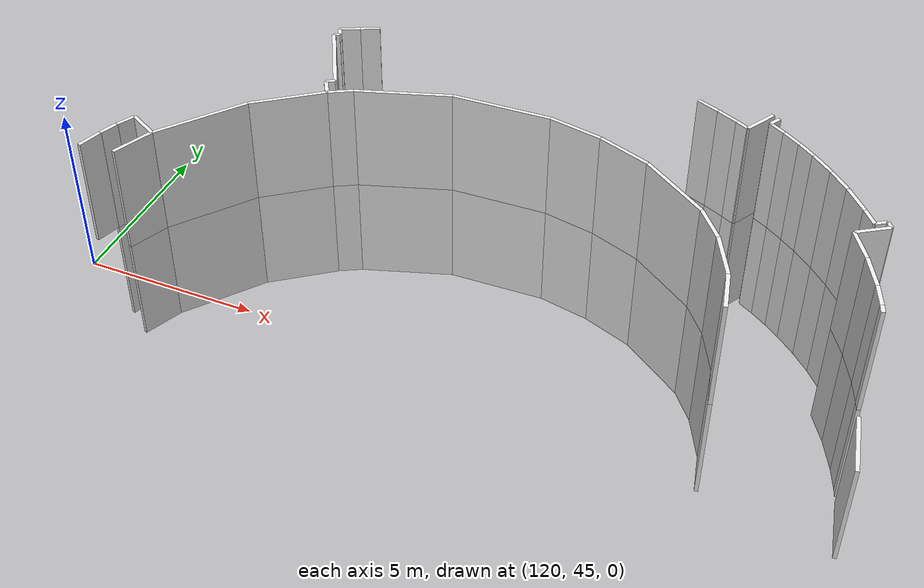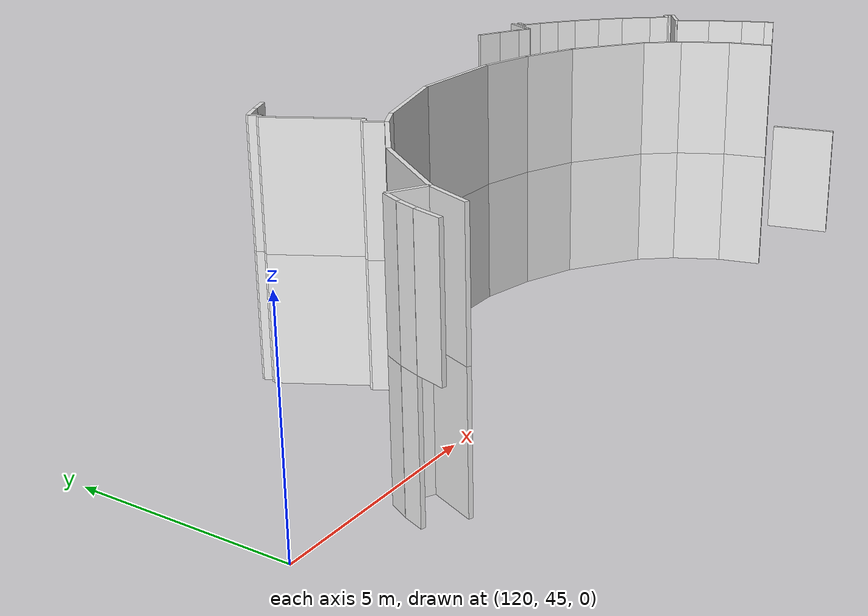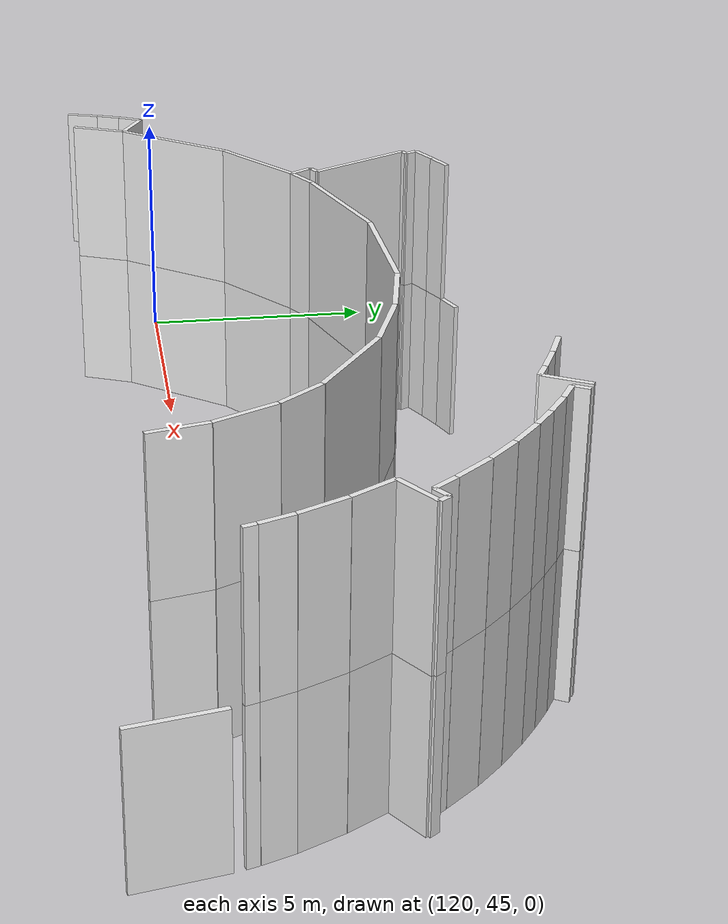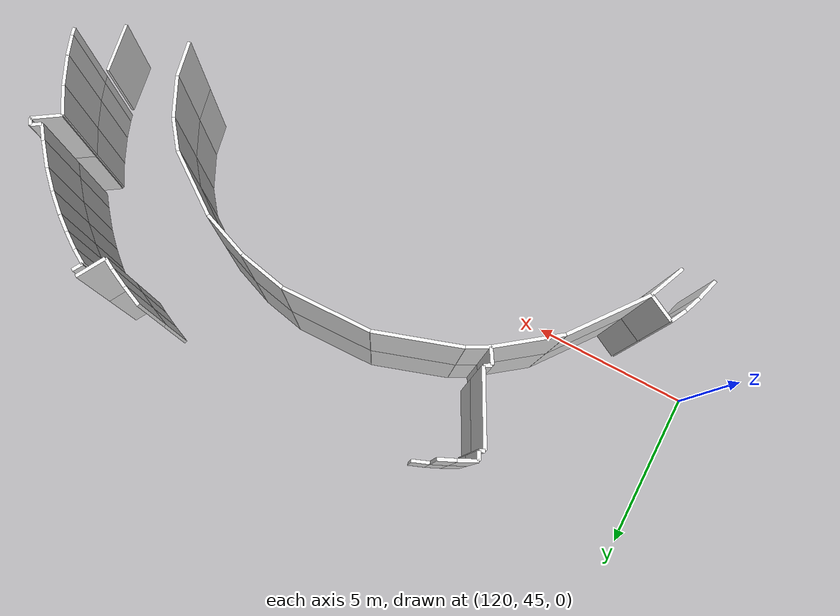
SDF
<sdf version="1.6">
 <world name="default">
  <model name="wall_123.1_43.7_1.5">
   <static>true</static>
   <pose>123.06000000002678 43.71500000008382 1.5 0 0 -1.9676144706524863</pose>
   <link name="link">
    <visual name="visual">
     <geometry><box><size>1.138463877595061 0.1 3</size></box></geometry>
     <material>
      <script><uri>file://media/materials/scripts/gazebo.material</uri><name>Gazebo/White</name></script>
     </material>
    </visual>
    <collision name="collision"><geometry><box><size>1.138463877595061 0.1 3</size></box></geometry></collision>
   </link>
  </model>
  <model name="wall_137.8_44.2_1.5">
   <static>true</static>
   <pose>137.8300000000163 44.235000000102445 1.5 0 0 1.791443509480411</pose>
   <link name="link">
    <visual name="visual">
     <geometry><box><size>1.0965856098074533 0.1 3</size></box></geometry>
     <material>
      <script><uri>file://media/materials/scripts/gazebo.material</uri><name>Gazebo/White</name></script>
     </material>
    </visual>
    <collision name="collision"><geometry><box><size>1.0965856098074533 0.1 3</size></box></geometry></collision>
   </link>
  </model>
  <model name="wall_137.4_45.3_1.5">
   <static>true</static>
   <pose>137.43499999999767 45.33499999996275 1.5 0 0 2.023768184880482</pose>
   <link name="link">
    <visual name="visual">
     <geometry><box><size>1.2567418190697117 0.1 3</size></box></geometry>
     <material>
      <script><uri>file://media/materials/scripts/gazebo.material</uri><name>Gazebo/White</name></script>
     </material>
    </visual>
    <collision name="collision"><geometry><box><size>1.2567418190697117 0.1 3</size></box></geometry></collision>
   </link>
  </model>
  <model name="wall_136.8_46.3_1.5">
   <static>true</static>
   <pose>136.84999999997672 46.294999999925494 1.5 0 0 2.23620628008944</pose>
   <link name="link">
    <visual name="visual">
     <geometry><box><size>1.00424100695654 0.1 3</size></box></geometry>
     <material>
      <script><uri>file://media/materials/scripts/gazebo.material</uri><name>Gazebo/White</name></script>
     </material>
    </visual>
    <collision name="collision"><geometry><box><size>1.00424100695654 0.1 3</size></box></geometry></collision>
   </link>
  </model>
  <model name="wall_135.7_47.3_1.5">
   <static>true</static>
   <pose>135.69499999997788 47.294999999925494 1.5 0 0 2.52022459985605</pose>
   <link name="link">
    <visual name="visual">
     <geometry><box><size>2.0785090810284466 0.1 3</size></box></geometry>
     <material>
      <script><uri>file://media/materials/scripts/gazebo.material</uri><name>Gazebo/White</name></script>
     </material>
    </visual>
    <collision name="collision"><geometry><box><size>2.0785090810284466 0.1 3</size></box></geometry></collision>
   </link>
  </model>
  <model name="wall_134.2_48.2_1.5">
   <static>true</static>
   <pose>134.16499999997905 48.15999999991618 1.5 0 0 2.7788283943136243</pose>
   <link name="link">
    <visual name="visual">
     <geometry><box><size>1.4653668482692697 0.1 3</size></box></geometry>
     <material>
      <script><uri>file://media/materials/scripts/gazebo.material</uri><name>Gazebo/White</name></script>
     </material>
    </visual>
    <collision name="collision"><geometry><box><size>1.4653668482692697 0.1 3</size></box></geometry></collision>
   </link>
  </model>
  <model name="wall_132.8_48.6_1.5">
   <static>true</static>
   <pose>132.77499999999418 48.56499999994412 1.5 0 0 2.9387475563767675</pose>
   <link name="link">
    <visual name="visual">
     <geometry><box><size>1.4395138067935933 0.1 3</size></box></geometry>
     <material>
      <script><uri>file://media/materials/scripts/gazebo.material</uri><name>Gazebo/White</name></script>
     </material>
    </visual>
    <collision name="collision"><geometry><box><size>1.4395138067935933 0.1 3</size></box></geometry></collision>
   </link>
  </model>
  <model name="wall_130.8_48.7_1.5">
   <static>true</static>
   <pose>130.75500000000466 48.675000000046566 1.5 0 0 -3.1149829664066115</pose>
   <link name="link">
    <visual name="visual">
     <geometry><box><size>2.6309313940125887 0.1 3</size></box></geometry>
     <material>
      <script><uri>file://media/materials/scripts/gazebo.material</uri><name>Gazebo/White</name></script>
     </material>
    </visual>
    <collision name="collision"><geometry><box><size>2.6309313940125887 0.1 3</size></box></geometry></collision>
   </link>
  </model>
  <model name="wall_128.2_48.2_1.5">
   <static>true</static>
   <pose>128.23500000001513 48.23999999999069 1.5 0 0 -2.8210874284542298</pose>
   <link name="link">
    <visual name="visual">
     <geometry><box><size>2.5393109302178 0.1 3</size></box></geometry>
     <material>
      <script><uri>file://media/materials/scripts/gazebo.material</uri><name>Gazebo/White</name></script>
     </material>
    </visual>
    <collision name="collision"><geometry><box><size>2.5393109302178 0.1 3</size></box></geometry></collision>
   </link>
  </model>
  <model name="wall_126.7_47.7_1.5">
   <static>true</static>
   <pose>126.73500000001513 47.674999999813735 1.5 0 0 -2.6316205938106854</pose>
   <link name="link">
    <visual name="visual">
     <geometry><box><size>0.6760177513049456 0.1 3</size></box></geometry>
     <material>
      <script><uri>file://media/materials/scripts/gazebo.material</uri><name>Gazebo/White</name></script>
     </material>
    </visual>
    <collision name="collision"><geometry><box><size>0.6760177513049456 0.1 3</size></box></geometry></collision>
   </link>
  </model>
  <model name="wall_125.6_46.9_1.5">
   <static>true</static>
   <pose>125.63500000000931 46.894999999785796 1.5 0 0 -2.489207277071973</pose>
   <link name="link">
    <visual name="visual">
     <geometry><box><size>2.0260799589130722 0.1 3</size></box></geometry>
     <material>
      <script><uri>file://media/materials/scripts/gazebo.material</uri><name>Gazebo/White</name></script>
     </material>
    </visual>
    <collision name="collision"><geometry><box><size>2.0260799589130722 0.1 3</size></box></geometry></collision>
   </link>
  </model>
  <model name="wall_124.1_45.3_1.5">
   <static>true</static>
   <pose>124.05500000002212 45.26000000000931 1.5 0 0 -2.2205424754970724</pose>
   <link name="link">
    <visual name="visual">
     <geometry><box><size>2.562049960132707 0.1 3</size></box></geometry>
     <material>
      <script><uri>file://media/materials/scripts/gazebo.material</uri><name>Gazebo/White</name></script>
     </material>
    </visual>
    <collision name="collision"><geometry><box><size>2.562049960132707 0.1 3</size></box></geometry></collision>
   </link>
  </model>
  <model name="wall_141.0_45.0_1.5">
   <static>true</static>
   <pose>141.0450000000128 44.985000000102445 1.5 0 0 1.8662371639889692</pose>
   <link name="link">
    <visual name="visual">
     <geometry><box><size>0.24041630558764046 0.1 3</size></box></geometry>
     <material>
      <script><uri>file://media/materials/scripts/gazebo.material</uri><name>Gazebo/White</name></script>
     </material>
    </visual>
    <collision name="collision"><geometry><box><size>0.24041630558764046 0.1 3</size></box></geometry></collision>
   </link>
  </model>
  <model name="wall_140.9_45.4_1.5">
   <static>true</static>
   <pose>140.89999999999418 45.39500000001863 1.5 0 0 1.9277082632742863</pose>
   <link name="link">
    <visual name="visual">
     <geometry><box><size>0.6296824595282008 0.1 3</size></box></geometry>
     <material>
      <script><uri>file://media/materials/scripts/gazebo.material</uri><name>Gazebo/White</name></script>
     </material>
    </visual>
    <collision name="collision"><geometry><box><size>0.6296824595282008 0.1 3</size></box></geometry></collision>
   </link>
  </model>
  <model name="wall_140.6_46.1_1.5">
   <static>true</static>
   <pose>140.5899999999965 46.109999999869615 1.5 0 0 2.015215536730963</pose>
   <link name="link">
    <visual name="visual">
     <geometry><box><size>0.9303762678194886 0.1 3</size></box></geometry>
     <material>
      <script><uri>file://media/materials/scripts/gazebo.material</uri><name>Gazebo/White</name></script>
     </material>
    </visual>
    <collision name="collision"><geometry><box><size>0.9303762678194886 0.1 3</size></box></geometry></collision>
   </link>
  </model>
  <model name="wall_140.2_46.9_1.5">
   <static>true</static>
   <pose>140.1600000000035 46.91499999980442 1.5 0 0 2.1093037835158754</pose>
   <link name="link">
    <visual name="visual">
     <geometry><box><size>0.8969392398863834 0.1 3</size></box></geometry>
     <material>
      <script><uri>file://media/materials/scripts/gazebo.material</uri><name>Gazebo/White</name></script>
     </material>
    </visual>
    <collision name="collision"><geometry><box><size>0.8969392398863834 0.1 3</size></box></geometry></collision>
   </link>
  </model>
  <model name="wall_140.3_47.5_1.5">
   <static>true</static>
   <pose>140.30499999999302 47.549999999813735 1.5 0 0 0.5880026035475675</pose>
   <link name="link">
    <visual name="visual">
     <geometry><box><size>0.9013878188659973 0.1 3</size></box></geometry>
     <material>
      <script><uri>file://media/materials/scripts/gazebo.material</uri><name>Gazebo/White</name></script>
     </material>
    </visual>
    <collision name="collision"><geometry><box><size>0.9013878188659973 0.1 3</size></box></geometry></collision>
   </link>
  </model>
  <model name="wall_140.6_47.9_1.5">
   <static>true</static>
   <pose>140.61999999999534 47.88500000000931 1.5 0 0 2.185459277614746</pose>
   <link name="link">
    <visual name="visual">
     <geometry><box><size>0.2080865207837242 0.1 3</size></box></geometry>
     <material>
      <script><uri>file://media/materials/scripts/gazebo.material</uri><name>Gazebo/White</name></script>
     </material>
    </visual>
    <collision name="collision"><geometry><box><size>0.2080865207837242 0.1 3</size></box></geometry></collision>
   </link>
  </model>
  <model name="wall_140.4_47.9_1.5">
   <static>true</static>
   <pose>140.42999999999302 47.88000000012107 1.5 0 0 -2.536047989565728</pose>
   <link name="link">
    <visual name="visual">
     <geometry><box><size>0.31622776611991643 0.1 3</size></box></geometry>
     <material>
      <script><uri>file://media/materials/scripts/gazebo.material</uri><name>Gazebo/White</name></script>
     </material>
    </visual>
    <collision name="collision"><geometry><box><size>0.31622776611991643 0.1 3</size></box></geometry></collision>
   </link>
  </model>
  <model name="wall_140.1_48.0_1.5">
   <static>true</static>
   <pose>140.14499999998952 47.98999999999069 1.5 0 0 2.2301063952368514</pose>
   <link name="link">
    <visual name="visual">
     <geometry><box><size>0.5060632370801604 0.1 3</size></box></geometry>
     <material>
      <script><uri>file://media/materials/scripts/gazebo.material</uri><name>Gazebo/White</name></script>
     </material>
    </visual>
    <collision name="collision"><geometry><box><size>0.5060632370801604 0.1 3</size></box></geometry></collision>
   </link>
  </model>
  <model name="wall_139.7_48.5_1.5">
   <static>true</static>
   <pose>139.72500000000582 48.50499999988824 1.5 0 0 2.2702001990573595</pose>
   <link name="link">
    <visual name="visual">
     <geometry><box><size>0.8232860984051048 0.1 3</size></box></geometry>
     <material>
      <script><uri>file://media/materials/scripts/gazebo.material</uri><name>Gazebo/White</name></script>
     </material>
    </visual>
    <collision name="collision"><geometry><box><size>0.8232860984051048 0.1 3</size></box></geometry></collision>
   </link>
  </model>
  <model name="wall_139.2_49.1_1.5">
   <static>true</static>
   <pose>139.21000000002095 49.06999999983236 1.5 0 0 2.356194490192345</pose>
   <link name="link">
    <visual name="visual">
     <geometry><box><size>0.7071067811865476 0.1 3</size></box></geometry>
     <material>
      <script><uri>file://media/materials/scripts/gazebo.material</uri><name>Gazebo/White</name></script>
     </material>
    </visual>
    <collision name="collision"><geometry><box><size>0.7071067811865476 0.1 3</size></box></geometry></collision>
   </link>
  </model>
  <model name="wall_138.7_49.6_1.5">
   <static>true</static>
   <pose>138.69000000000233 49.55499999993481 1.5 0 0 2.425390768629206</pose>
   <link name="link">
    <visual name="visual">
     <geometry><box><size>0.7158910533264337 0.1 3</size></box></geometry>
     <material>
      <script><uri>file://media/materials/scripts/gazebo.material</uri><name>Gazebo/White</name></script>
     </material>
    </visual>
    <collision name="collision"><geometry><box><size>0.7158910533264337 0.1 3</size></box></geometry></collision>
   </link>
  </model>
  <model name="wall_138.2_49.9_1.5">
   <static>true</static>
   <pose>138.20999999999185 49.949999999953434 1.5 0 0 2.490515932379146</pose>
   <link name="link">
    <visual name="visual">
     <geometry><box><size>0.5280151511832034 0.1 3</size></box></geometry>
     <material>
      <script><uri>file://media/materials/scripts/gazebo.material</uri><name>Gazebo/White</name></script>
     </material>
    </visual>
    <collision name="collision"><geometry><box><size>0.5280151511832034 0.1 3</size></box></geometry></collision>
   </link>
  </model>
  <model name="wall_137.8_50.3_1.5">
   <static>true</static>
   <pose>137.76999999998952 50.27000000001863 1.5 0 0 2.5337906570605933</pose>
   <link name="link">
    <visual name="visual">
     <geometry><box><size>0.5603570292322684 0.1 3</size></box></geometry>
     <material>
      <script><uri>file://media/materials/scripts/gazebo.material</uri><name>Gazebo/White</name></script>
     </material>
    </visual>
    <collision name="collision"><geometry><box><size>0.5603570292322684 0.1 3</size></box></geometry></collision>
   </link>
  </model>
  <model name="wall_137.3_50.6_1.5">
   <static>true</static>
   <pose>137.33499999999185 50.550000000046566 1.5 0 0 2.612003055220354</pose>
   <link name="link">
    <visual name="visual">
     <geometry><box><size>0.4750789406643591 0.1 3</size></box></geometry>
     <material>
      <script><uri>file://media/materials/scripts/gazebo.material</uri><name>Gazebo/White</name></script>
     </material>
    </visual>
    <collision name="collision"><geometry><box><size>0.4750789406643591 0.1 3</size></box></geometry></collision>
   </link>
  </model>
  <model name="wall_137.2_50.8_1.5">
   <static>true</static>
   <pose>137.20999999999185 50.81000000005588 1.5 0 0 1.0516502130185124</pose>
   <link name="link">
    <visual name="visual">
     <geometry><box><size>0.3224903101456472 0.1 3</size></box></geometry>
     <material>
      <script><uri>file://media/materials/scripts/gazebo.material</uri><name>Gazebo/White</name></script>
     </material>
    </visual>
    <collision name="collision"><geometry><box><size>0.3224903101456472 0.1 3</size></box></geometry></collision>
   </link>
  </model>
  <model name="wall_136.9_50.6_1.5">
   <static>true</static>
   <pose>136.88999999998487 50.64999999990687 1.5 0 0 -2.073639537823308</pose>
   <link name="link">
    <visual name="visual">
     <geometry><box><size>0.9130169766789803 0.1 3</size></box></geometry>
     <material>
      <script><uri>file://media/materials/scripts/gazebo.material</uri><name>Gazebo/White</name></script>
     </material>
    </visual>
    <collision name="collision"><geometry><box><size>0.9130169766789803 0.1 3</size></box></geometry></collision>
   </link>
  </model>
  <model name="wall_136.5_50.3_1.5">
   <static>true</static>
   <pose>136.5099999999802 50.33499999996275 1.5 0 0 2.6532587027240147</pose>
   <link name="link">
    <visual name="visual">
     <geometry><box><size>0.3623534186110825 0.1 3</size></box></geometry>
     <material>
      <script><uri>file://media/materials/scripts/gazebo.material</uri><name>Gazebo/White</name></script>
     </material>
    </visual>
    <collision name="collision"><geometry><box><size>0.3623534186110825 0.1 3</size></box></geometry></collision>
   </link>
  </model>
  <model name="wall_136.1_50.6_1.5">
   <static>true</static>
   <pose>136.07499999998254 50.550000000046566 1.5 0 0 2.7000002909144776</pose>
   <link name="link">
    <visual name="visual">
     <geometry><box><size>0.6083584470631678 0.1 3</size></box></geometry>
     <material>
      <script><uri>file://media/materials/scripts/gazebo.material</uri><name>Gazebo/White</name></script>
     </material>
    </visual>
    <collision name="collision"><geometry><box><size>0.6083584470631678 0.1 3</size></box></geometry></collision>
   </link>
  </model>
  <model name="wall_135.5_50.8_1.5">
   <static>true</static>
   <pose>135.50500000000466 50.80500000016764 1.5 0 0 2.740799204994712</pose>
   <link name="link">
    <visual name="visual">
     <geometry><box><size>0.6407807737140186 0.1 3</size></box></geometry>
     <material>
      <script><uri>file://media/materials/scripts/gazebo.material</uri><name>Gazebo/White</name></script>
     </material>
    </visual>
    <collision name="collision"><geometry><box><size>0.6407807737140186 0.1 3</size></box></geometry></collision>
   </link>
  </model>
  <model name="wall_126.6_50.9_1.5">
   <static>true</static>
   <pose>126.625 50.87000000011176 1.5 0 0 -2.7678658333139023</pose>
   <link name="link">
    <visual name="visual">
     <geometry><box><size>0.5478138370687667 0.1 3</size></box></geometry>
     <material>
      <script><uri>file://media/materials/scripts/gazebo.material</uri><name>Gazebo/White</name></script>
     </material>
    </visual>
    <collision name="collision"><geometry><box><size>0.5478138370687667 0.1 3</size></box></geometry></collision>
   </link>
  </model>
  <model name="wall_126.1_50.7_1.5">
   <static>true</static>
   <pose>126.13000000000466 50.65999999991618 1.5 0 0 -2.711830374125653</pose>
   <link name="link">
    <visual name="visual">
     <geometry><box><size>0.5280151513661996 0.1 3</size></box></geometry>
     <material>
      <script><uri>file://media/materials/scripts/gazebo.material</uri><name>Gazebo/White</name></script>
     </material>
    </visual>
    <collision name="collision"><geometry><box><size>0.5280151513661996 0.1 3</size></box></geometry></collision>
   </link>
  </model>
  <model name="wall_125.6_50.4_1.5">
   <static>true</static>
   <pose>125.64000000001397 50.424999999813735 1.5 0 0 -2.677945044588987</pose>
   <link name="link">
    <visual name="visual">
     <geometry><box><size>0.5590169943749475 0.1 3</size></box></geometry>
     <material>
      <script><uri>file://media/materials/scripts/gazebo.material</uri><name>Gazebo/White</name></script>
     </material>
    </visual>
    <collision name="collision"><geometry><box><size>0.5590169943749475 0.1 3</size></box></geometry></collision>
   </link>
  </model>
  <model name="wall_125.5_50.2_1.5">
   <static>true</static>
   <pose>125.45000000001164 50.18499999982305 1.5 0 0 -1.0899090465822627</pose>
   <link name="link">
    <visual name="visual">
     <geometry><box><size>0.25942243540278903 0.1 3</size></box></geometry>
     <material>
      <script><uri>file://media/materials/scripts/gazebo.material</uri><name>Gazebo/White</name></script>
     </material>
    </visual>
    <collision name="collision"><geometry><box><size>0.25942243540278903 0.1 3</size></box></geometry></collision>
   </link>
  </model>
  <model name="wall_125.4_50.0_1.5">
   <static>true</static>
   <pose>125.44000000000233 50.03499999991618 1.5 0 0 -2.6779450455868328</pose>
   <link name="link">
    <visual name="visual">
     <geometry><box><size>0.15652475836251026 0.1 3</size></box></geometry>
     <material>
      <script><uri>file://media/materials/scripts/gazebo.material</uri><name>Gazebo/White</name></script>
     </material>
    </visual>
    <collision name="collision"><geometry><box><size>0.15652475836251026 0.1 3</size></box></geometry></collision>
   </link>
  </model>
  <model name="wall_125.9_49.0_1.5">
   <static>true</static>
   <pose>125.88000000000466 49.02499999990687 1.5 0 0 -1.0888580748690009</pose>
   <link name="link">
    <visual name="visual">
     <geometry><box><size>2.2006589923848785 0.1 3</size></box></geometry>
     <material>
      <script><uri>file://media/materials/scripts/gazebo.material</uri><name>Gazebo/White</name></script>
     </material>
    </visual>
    <collision name="collision"><geometry><box><size>2.2006589923848785 0.1 3</size></box></geometry></collision>
   </link>
  </model>
  <model name="wall_126.3_48.0_1.5">
   <static>true</static>
   <pose>126.29000000000815 47.98999999999069 1.5 0 0 -2.6011731546460015</pose>
   <link name="link">
    <visual name="visual">
     <geometry><box><size>0.2332380756217132 0.1 3</size></box></geometry>
     <material>
      <script><uri>file://media/materials/scripts/gazebo.material</uri><name>Gazebo/White</name></script>
     </material>
    </visual>
    <collision name="collision"><geometry><box><size>0.2332380756217132 0.1 3</size></box></geometry></collision>
   </link>
  </model>
  <model name="wall_126.3_47.7_1.5">
   <static>true</static>
   <pose>126.31500000000233 47.71999999997206 1.5 0 0 -1.0338855844641808</pose>
   <link name="link">
    <visual name="visual">
     <geometry><box><size>0.48877397673011463 0.1 3</size></box></geometry>
     <material>
      <script><uri>file://media/materials/scripts/gazebo.material</uri><name>Gazebo/White</name></script>
     </material>
    </visual>
    <collision name="collision"><geometry><box><size>0.48877397673011463 0.1 3</size></box></geometry></collision>
   </link>
  </model>
  <model name="wall_122.9_44.4_1.5">
   <static>true</static>
   <pose>122.90500000002794 44.44500000006519 1.5 0 0 2.641312225689999</pose>
   <link name="link">
    <visual name="visual">
     <geometry><box><size>0.8547514257024362 0.1 3</size></box></geometry>
     <material>
      <script><uri>file://media/materials/scripts/gazebo.material</uri><name>Gazebo/White</name></script>
     </material>
    </visual>
    <collision name="collision"><geometry><box><size>0.8547514257024362 0.1 3</size></box></geometry></collision>
   </link>
  </model>
  <model name="wall_122.4_44.4_1.5">
   <static>true</static>
   <pose>122.41500000000815 44.425000000046566 1.5 0 0 -2.0432932626333105</pose>
   <link name="link">
    <visual name="visual">
     <geometry><box><size>0.5053711505089603 0.1 3</size></box></geometry>
     <material>
      <script><uri>file://media/materials/scripts/gazebo.material</uri><name>Gazebo/White</name></script>
     </material>
    </visual>
    <collision name="collision"><geometry><box><size>0.5053711505089603 0.1 3</size></box></geometry></collision>
   </link>
  </model>
  <model name="wall_122.2_44.0_1.5">
   <static>true</static>
   <pose>122.20999999999185 43.96500000008382 1.5 0 0 -1.936543627898681</pose>
   <link name="link">
    <visual name="visual">
     <geometry><box><size>0.5032891814753054 0.1 3</size></box></geometry>
     <material>
      <script><uri>file://media/materials/scripts/gazebo.material</uri><name>Gazebo/White</name></script>
     </material>
    </visual>
    <collision name="collision"><geometry><box><size>0.5032891814753054 0.1 3</size></box></geometry></collision>
   </link>
  </model>
  <model name="wall_141.3_43.9_1.5">
   <static>true</static>
   <pose>141.29000000000815 43.85499999998137 1.5 0 0 1.7623576470859033</pose>
   <link name="link">
    <visual name="visual">
     <geometry><box><size>1.6807438832950772 0.1 3</size></box></geometry>
     <material>
      <script><uri>file://media/materials/scripts/gazebo.material</uri><name>Gazebo/White</name></script>
     </material>
    </visual>
    <collision name="collision"><geometry><box><size>1.6807438832950772 0.1 3</size></box></geometry></collision>
   </link>
  </model>
  <model name="wall_123.1_43.7_4.5">
   <static>true</static>
   <pose>123.06000000002678 43.71500000008382 4.5 0 0 -1.9676144706524863</pose>
   <link name="link">
    <visual name="visual">
     <geometry><box><size>1.138463877595061 0.1 3</size></box></geometry>
     <material>
      <script><uri>file://media/materials/scripts/gazebo.material</uri><name>Gazebo/White</name></script>
     </material>
    </visual>
    <collision name="collision"><geometry><box><size>1.138463877595061 0.1 3</size></box></geometry></collision>
   </link>
  </model>
  <model name="wall_137.8_44.2_4.5">
   <static>true</static>
   <pose>137.8300000000163 44.235000000102445 4.5 0 0 1.791443509480411</pose>
   <link name="link">
    <visual name="visual">
     <geometry><box><size>1.0965856098074533 0.1 3</size></box></geometry>
     <material>
      <script><uri>file://media/materials/scripts/gazebo.material</uri><name>Gazebo/White</name></script>
     </material>
    </visual>
    <collision name="collision"><geometry><box><size>1.0965856098074533 0.1 3</size></box></geometry></collision>
   </link>
  </model>
  <model name="wall_137.4_45.3_4.5">
   <static>true</static>
   <pose>137.43499999999767 45.33499999996275 4.5 0 0 2.023768184880482</pose>
   <link name="link">
    <visual name="visual">
     <geometry><box><size>1.2567418190697117 0.1 3</size></box></geometry>
     <material>
      <script><uri>file://media/materials/scripts/gazebo.material</uri><name>Gazebo/White</name></script>
     </material>
    </visual>
    <collision name="collision"><geometry><box><size>1.2567418190697117 0.1 3</size></box></geometry></collision>
   </link>
  </model>
  <model name="wall_136.8_46.3_4.5">
   <static>true</static>
   <pose>136.84999999997672 46.294999999925494 4.5 0 0 2.23620628008944</pose>
   <link name="link">
    <visual name="visual">
     <geometry><box><size>1.00424100695654 0.1 3</size></box></geometry>
     <material>
      <script><uri>file://media/materials/scripts/gazebo.material</uri><name>Gazebo/White</name></script>
     </material>
    </visual>
    <collision name="collision"><geometry><box><size>1.00424100695654 0.1 3</size></box></geometry></collision>
   </link>
  </model>
  <model name="wall_135.7_47.3_4.5">
   <static>true</static>
   <pose>135.69499999997788 47.294999999925494 4.5 0 0 2.52022459985605</pose>
   <link name="link">
    <visual name="visual">
     <geometry><box><size>2.0785090810284466 0.1 3</size></box></geometry>
     <material>
      <script><uri>file://media/materials/scripts/gazebo.material</uri><name>Gazebo/White</name></script>
     </material>
    </visual>
    <collision name="collision"><geometry><box><size>2.0785090810284466 0.1 3</size></box></geometry></collision>
   </link>
  </model>
  <model name="wall_134.2_48.2_4.5">
   <static>true</static>
   <pose>134.16499999997905 48.15999999991618 4.5 0 0 2.7788283943136243</pose>
   <link name="link">
    <visual name="visual">
     <geometry><box><size>1.4653668482692697 0.1 3</size></box></geometry>
     <material>
      <script><uri>file://media/materials/scripts/gazebo.material</uri><name>Gazebo/White</name></script>
     </material>
    </visual>
    <collision name="collision"><geometry><box><size>1.4653668482692697 0.1 3</size></box></geometry></collision>
   </link>
  </model>
  <model name="wall_132.8_48.6_4.5">
   <static>true</static>
   <pose>132.77499999999418 48.56499999994412 4.5 0 0 2.9387475563767675</pose>
   <link name="link">
    <visual name="visual">
     <geometry><box><size>1.4395138067935933 0.1 3</size></box></geometry>
     <material>
      <script><uri>file://media/materials/scripts/gazebo.material</uri><name>Gazebo/White</name></script>
     </material>
    </visual>
    <collision name="collision"><geometry><box><size>1.4395138067935933 0.1 3</size></box></geometry></collision>
   </link>
  </model>
  <model name="wall_130.8_48.7_4.5">
   <static>true</static>
   <pose>130.75500000000466 48.675000000046566 4.5 0 0 -3.1149829664066115</pose>
   <link name="link">
    <visual name="visual">
     <geometry><box><size>2.6309313940125887 0.1 3</size></box></geometry>
     <material>
      <script><uri>file://media/materials/scripts/gazebo.material</uri><name>Gazebo/White</name></script>
     </material>
    </visual>
    <collision name="collision"><geometry><box><size>2.6309313940125887 0.1 3</size></box></geometry></collision>
   </link>
  </model>
  <model name="wall_128.2_48.2_4.5">
   <static>true</static>
   <pose>128.23500000001513 48.23999999999069 4.5 0 0 -2.8210874284542298</pose>
   <link name="link">
    <visual name="visual">
     <geometry><box><size>2.5393109302178 0.1 3</size></box></geometry>
     <material>
      <script><uri>file://media/materials/scripts/gazebo.material</uri><name>Gazebo/White</name></script>
     </material>
    </visual>
    <collision name="collision"><geometry><box><size>2.5393109302178 0.1 3</size></box></geometry></collision>
   </link>
  </model>
  <model name="wall_126.7_47.7_4.5">
   <static>true</static>
   <pose>126.73500000001513 47.674999999813735 4.5 0 0 -2.6316205938106854</pose>
   <link name="link">
    <visual name="visual">
     <geometry><box><size>0.6760177513049456 0.1 3</size></box></geometry>
     <material>
      <script><uri>file://media/materials/scripts/gazebo.material</uri><name>Gazebo/White</name></script>
     </material>
    </visual>
    <collision name="collision"><geometry><box><size>0.6760177513049456 0.1 3</size></box></geometry></collision>
   </link>
  </model>
  <model name="wall_125.6_46.9_4.5">
   <static>true</static>
   <pose>125.63500000000931 46.894999999785796 4.5 0 0 -2.489207277071973</pose>
   <link name="link">
    <visual name="visual">
     <geometry><box><size>2.0260799589130722 0.1 3</size></box></geometry>
     <material>
      <script><uri>file://media/materials/scripts/gazebo.material</uri><name>Gazebo/White</name></script>
     </material>
    </visual>
    <collision name="collision"><geometry><box><size>2.0260799589130722 0.1 3</size></box></geometry></collision>
   </link>
  </model>
  <model name="wall_124.1_45.3_4.5">
   <static>true</static>
   <pose>124.05500000002212 45.26000000000931 4.5 0 0 -2.2205424754970724</pose>
   <link name="link">
    <visual name="visual">
     <geometry><box><size>2.562049960132707 0.1 3</size></box></geometry>
     <material>
      <script><uri>file://media/materials/scripts/gazebo.material</uri><name>Gazebo/White</name></script>
     </material>
    </visual>
    <collision name="collision"><geometry><box><size>2.562049960132707 0.1 3</size></box></geometry></collision>
   </link>
  </model>
  <model name="wall_141.0_45.0_4.5">
   <static>true</static>
   <pose>141.0450000000128 44.985000000102445 4.5 0 0 1.8662371639889692</pose>
   <link name="link">
    <visual name="visual">
     <geometry><box><size>0.24041630558764046 0.1 3</size></box></geometry>
     <material>
      <script><uri>file://media/materials/scripts/gazebo.material</uri><name>Gazebo/White</name></script>
     </material>
    </visual>
    <collision name="collision"><geometry><box><size>0.24041630558764046 0.1 3</size></box></geometry></collision>
   </link>
  </model>
  <model name="wall_140.9_45.4_4.5">
   <static>true</static>
   <pose>140.89999999999418 45.39500000001863 4.5 0 0 1.9277082632742863</pose>
   <link name="link">
    <visual name="visual">
     <geometry><box><size>0.6296824595282008 0.1 3</size></box></geometry>
     <material>
      <script><uri>file://media/materials/scripts/gazebo.material</uri><name>Gazebo/White</name></script>
     </material>
    </visual>
    <collision name="collision"><geometry><box><size>0.6296824595282008 0.1 3</size></box></geometry></collision>
   </link>
  </model>
  <model name="wall_140.6_46.1_4.5">
   <static>true</static>
   <pose>140.5899999999965 46.109999999869615 4.5 0 0 2.015215536730963</pose>
   <link name="link">
    <visual name="visual">
     <geometry><box><size>0.9303762678194886 0.1 3</size></box></geometry>
     <material>
      <script><uri>file://media/materials/scripts/gazebo.material</uri><name>Gazebo/White</name></script>
     </material>
    </visual>
    <collision name="collision"><geometry><box><size>0.9303762678194886 0.1 3</size></box></geometry></collision>
   </link>
  </model>
  <model name="wall_140.2_46.9_4.5">
   <static>true</static>
   <pose>140.1600000000035 46.91499999980442 4.5 0 0 2.1093037835158754</pose>
   <link name="link">
    <visual name="visual">
     <geometry><box><size>0.8969392398863834 0.1 3</size></box></geometry>
     <material>
      <script><uri>file://media/materials/scripts/gazebo.material</uri><name>Gazebo/White</name></script>
     </material>
    </visual>
    <collision name="collision"><geometry><box><size>0.8969392398863834 0.1 3</size></box></geometry></collision>
   </link>
  </model>
  <model name="wall_140.3_47.5_4.5">
   <static>true</static>
   <pose>140.30499999999302 47.549999999813735 4.5 0 0 0.5880026035475675</pose>
   <link name="link">
    <visual name="visual">
     <geometry><box><size>0.9013878188659973 0.1 3</size></box></geometry>
     <material>
      <script><uri>file://media/materials/scripts/gazebo.material</uri><name>Gazebo/White</name></script>
     </material>
    </visual>
    <collision name="collision"><geometry><box><size>0.9013878188659973 0.1 3</size></box></geometry></collision>
   </link>
  </model>
  <model name="wall_140.6_47.9_4.5">
   <static>true</static>
   <pose>140.61999999999534 47.88500000000931 4.5 0 0 2.185459277614746</pose>
   <link name="link">
    <visual name="visual">
     <geometry><box><size>0.2080865207837242 0.1 3</size></box></geometry>
     <material>
      <script><uri>file://media/materials/scripts/gazebo.material</uri><name>Gazebo/White</name></script>
     </material>
    </visual>
    <collision name="collision"><geometry><box><size>0.2080865207837242 0.1 3</size></box></geometry></collision>
   </link>
  </model>
  <model name="wall_140.4_47.9_4.5">
   <static>true</static>
   <pose>140.42999999999302 47.88000000012107 4.5 0 0 -2.536047989565728</pose>
   <link name="link">
    <visual name="visual">
     <geometry><box><size>0.31622776611991643 0.1 3</size></box></geometry>
     <material>
      <script><uri>file://media/materials/scripts/gazebo.material</uri><name>Gazebo/White</name></script>
     </material>
    </visual>
    <collision name="collision"><geometry><box><size>0.31622776611991643 0.1 3</size></box></geometry></collision>
   </link>
  </model>
  <model name="wall_140.1_48.0_4.5">
   <static>true</static>
   <pose>140.14499999998952 47.98999999999069 4.5 0 0 2.2301063952368514</pose>
   <link name="link">
    <visual name="visual">
     <geometry><box><size>0.5060632370801604 0.1 3</size></box></geometry>
     <material>
      <script><uri>file://media/materials/scripts/gazebo.material</uri><name>Gazebo/White</name></script>
     </material>
    </visual>
    <collision name="collision"><geometry><box><size>0.5060632370801604 0.1 3</size></box></geometry></collision>
   </link>
  </model>
  <model name="wall_139.7_48.5_4.5">
   <static>true</static>
   <pose>139.72500000000582 48.50499999988824 4.5 0 0 2.2702001990573595</pose>
   <link name="link">
    <visual name="visual">
     <geometry><box><size>0.8232860984051048 0.1 3</size></box></geometry>
     <material>
      <script><uri>file://media/materials/scripts/gazebo.material</uri><name>Gazebo/White</name></script>
     </material>
    </visual>
    <collision name="collision"><geometry><box><size>0.8232860984051048 0.1 3</size></box></geometry></collision>
   </link>
  </model>
  <model name="wall_139.2_49.1_4.5">
   <static>true</static>
   <pose>139.21000000002095 49.06999999983236 4.5 0 0 2.356194490192345</pose>
   <link name="link">
    <visual name="visual">
     <geometry><box><size>0.7071067811865476 0.1 3</size></box></geometry>
     <material>
      <script><uri>file://media/materials/scripts/gazebo.material</uri><name>Gazebo/White</name></script>
     </material>
    </visual>
    <collision name="collision"><geometry><box><size>0.7071067811865476 0.1 3</size></box></geometry></collision>
   </link>
  </model>
  <model name="wall_138.7_49.6_4.5">
   <static>true</static>
   <pose>138.69000000000233 49.55499999993481 4.5 0 0 2.425390768629206</pose>
   <link name="link">
    <visual name="visual">
     <geometry><box><size>0.7158910533264337 0.1 3</size></box></geometry>
     <material>
      <script><uri>file://media/materials/scripts/gazebo.material</uri><name>Gazebo/White</name></script>
     </material>
    </visual>
    <collision name="collision"><geometry><box><size>0.7158910533264337 0.1 3</size></box></geometry></collision>
   </link>
  </model>
  <model name="wall_138.2_49.9_4.5">
   <static>true</static>
   <pose>138.20999999999185 49.949999999953434 4.5 0 0 2.490515932379146</pose>
   <link name="link">
    <visual name="visual">
     <geometry><box><size>0.5280151511832034 0.1 3</size></box></geometry>
     <material>
      <script><uri>file://media/materials/scripts/gazebo.material</uri><name>Gazebo/White</name></script>
     </material>
    </visual>
    <collision name="collision"><geometry><box><size>0.5280151511832034 0.1 3</size></box></geometry></collision>
   </link>
  </model>
  <model name="wall_137.8_50.3_4.5">
   <static>true</static>
   <pose>137.76999999998952 50.27000000001863 4.5 0 0 2.5337906570605933</pose>
   <link name="link">
    <visual name="visual">
     <geometry><box><size>0.5603570292322684 0.1 3</size></box></geometry>
     <material>
      <script><uri>file://media/materials/scripts/gazebo.material</uri><name>Gazebo/White</name></script>
     </material>
    </visual>
    <collision name="collision"><geometry><box><size>0.5603570292322684 0.1 3</size></box></geometry></collision>
   </link>
  </model>
  <model name="wall_137.3_50.6_4.5">
   <static>true</static>
   <pose>137.33499999999185 50.550000000046566 4.5 0 0 2.612003055220354</pose>
   <link name="link">
    <visual name="visual">
     <geometry><box><size>0.4750789406643591 0.1 3</size></box></geometry>
     <material>
      <script><uri>file://media/materials/scripts/gazebo.material</uri><name>Gazebo/White</name></script>
     </material>
    </visual>
    <collision name="collision"><geometry><box><size>0.4750789406643591 0.1 3</size></box></geometry></collision>
   </link>
  </model>
  <model name="wall_137.2_50.8_4.5">
   <static>true</static>
   <pose>137.20999999999185 50.81000000005588 4.5 0 0 1.0516502130185124</pose>
   <link name="link">
    <visual name="visual">
     <geometry><box><size>0.3224903101456472 0.1 3</size></box></geometry>
     <material>
      <script><uri>file://media/materials/scripts/gazebo.material</uri><name>Gazebo/White</name></script>
     </material>
    </visual>
    <collision name="collision"><geometry><box><size>0.3224903101456472 0.1 3</size></box></geometry></collision>
   </link>
  </model>
  <model name="wall_136.9_50.6_4.5">
   <static>true</static>
   <pose>136.88999999998487 50.64999999990687 4.5 0 0 -2.073639537823308</pose>
   <link name="link">
    <visual name="visual">
     <geometry><box><size>0.9130169766789803 0.1 3</size></box></geometry>
     <material>
      <script><uri>file://media/materials/scripts/gazebo.material</uri><name>Gazebo/White</name></script>
     </material>
    </visual>
    <collision name="collision"><geometry><box><size>0.9130169766789803 0.1 3</size></box></geometry></collision>
   </link>
  </model>
  <model name="wall_136.5_50.3_4.5">
   <static>true</static>
   <pose>136.5099999999802 50.33499999996275 4.5 0 0 2.6532587027240147</pose>
   <link name="link">
    <visual name="visual">
     <geometry><box><size>0.3623534186110825 0.1 3</size></box></geometry>
     <material>
      <script><uri>file://media/materials/scripts/gazebo.material</uri><name>Gazebo/White</name></script>
     </material>
    </visual>
    <collision name="collision"><geometry><box><size>0.3623534186110825 0.1 3</size></box></geometry></collision>
   </link>
  </model>
  <model name="wall_136.1_50.6_4.5">
   <static>true</static>
   <pose>136.07499999998254 50.550000000046566 4.5 0 0 2.7000002909144776</pose>
   <link name="link">
    <visual name="visual">
     <geometry><box><size>0.6083584470631678 0.1 3</size></box></geometry>
     <material>
      <script><uri>file://media/materials/scripts/gazebo.material</uri><name>Gazebo/White</name></script>
     </material>
    </visual>
    <collision name="collision"><geometry><box><size>0.6083584470631678 0.1 3</size></box></geometry></collision>
   </link>
  </model>
  <model name="wall_135.5_50.8_4.5">
   <static>true</static>
   <pose>135.50500000000466 50.80500000016764 4.5 0 0 2.740799204994712</pose>
   <link name="link">
    <visual name="visual">
     <geometry><box><size>0.6407807737140186 0.1 3</size></box></geometry>
     <material>
      <script><uri>file://media/materials/scripts/gazebo.material</uri><name>Gazebo/White</name></script>
     </material>
    </visual>
    <collision name="collision"><geometry><box><size>0.6407807737140186 0.1 3</size></box></geometry></collision>
   </link>
  </model>
  <model name="wall_126.1_50.7_4.5">
   <static>true</static>
   <pose>126.13000000000466 50.65999999991618 4.5 0 0 -2.711830374125653</pose>
   <link name="link">
    <visual name="visual">
     <geometry><box><size>0.5280151513661996 0.1 3</size></box></geometry>
     <material>
      <script><uri>file://media/materials/scripts/gazebo.material</uri><name>Gazebo/White</name></script>
     </material>
    </visual>
    <collision name="collision"><geometry><box><size>0.5280151513661996 0.1 3</size></box></geometry></collision>
   </link>
  </model>
  <model name="wall_125.6_50.4_4.5">
   <static>true</static>
   <pose>125.64000000001397 50.424999999813735 4.5 0 0 -2.677945044588987</pose>
   <link name="link">
    <visual name="visual">
     <geometry><box><size>0.5590169943749475 0.1 3</size></box></geometry>
     <material>
      <script><uri>file://media/materials/scripts/gazebo.material</uri><name>Gazebo/White</name></script>
     </material>
    </visual>
    <collision name="collision"><geometry><box><size>0.5590169943749475 0.1 3</size></box></geometry></collision>
   </link>
  </model>
  <model name="wall_125.5_50.2_4.5">
   <static>true</static>
   <pose>125.45000000001164 50.18499999982305 4.5 0 0 -1.0899090465822627</pose>
   <link name="link">
    <visual name="visual">
     <geometry><box><size>0.25942243540278903 0.1 3</size></box></geometry>
     <material>
      <script><uri>file://media/materials/scripts/gazebo.material</uri><name>Gazebo/White</name></script>
     </material>
    </visual>
    <collision name="collision"><geometry><box><size>0.25942243540278903 0.1 3</size></box></geometry></collision>
   </link>
  </model>
  <model name="wall_125.4_50.0_4.5">
   <static>true</static>
   <pose>125.44000000000233 50.03499999991618 4.5 0 0 -2.6779450455868328</pose>
   <link name="link">
    <visual name="visual">
     <geometry><box><size>0.15652475836251026 0.1 3</size></box></geometry>
     <material>
      <script><uri>file://media/materials/scripts/gazebo.material</uri><name>Gazebo/White</name></script>
     </material>
    </visual>
    <collision name="collision"><geometry><box><size>0.15652475836251026 0.1 3</size></box></geometry></collision>
   </link>
  </model>
  <model name="wall_125.9_49.0_4.5">
   <static>true</static>
   <pose>125.88000000000466 49.02499999990687 4.5 0 0 -1.0888580748690009</pose>
   <link name="link">
    <visual name="visual">
     <geometry><box><size>2.2006589923848785 0.1 3</size></box></geometry>
     <material>
      <script><uri>file://media/materials/scripts/gazebo.material</uri><name>Gazebo/White</name></script>
     </material>
    </visual>
    <collision name="collision"><geometry><box><size>2.2006589923848785 0.1 3</size></box></geometry></collision>
   </link>
  </model>
  <model name="wall_126.3_48.0_4.5">
   <static>true</static>
   <pose>126.29000000000815 47.98999999999069 4.5 0 0 -2.6011731546460015</pose>
   <link name="link">
    <visual name="visual">
     <geometry><box><size>0.2332380756217132 0.1 3</size></box></geometry>
     <material>
      <script><uri>file://media/materials/scripts/gazebo.material</uri><name>Gazebo/White</name></script>
     </material>
    </visual>
    <collision name="collision"><geometry><box><size>0.2332380756217132 0.1 3</size></box></geometry></collision>
   </link>
  </model>
  <model name="wall_126.3_47.7_4.5">
   <static>true</static>
   <pose>126.31500000000233 47.71999999997206 4.5 0 0 -1.0338855844641808</pose>
   <link name="link">
    <visual name="visual">
     <geometry><box><size>0.48877397673011463 0.1 3</size></box></geometry>
     <material>
      <script><uri>file://media/materials/scripts/gazebo.material</uri><name>Gazebo/White</name></script>
     </material>
    </visual>
    <collision name="collision"><geometry><box><size>0.48877397673011463 0.1 3</size></box></geometry></collision>
   </link>
  </model>
  <model name="wall_122.9_44.4_4.5">
   <static>true</static>
   <pose>122.90500000002794 44.44500000006519 4.5 0 0 2.641312225689999</pose>
   <link name="link">
    <visual name="visual">
     <geometry><box><size>0.8547514257024362 0.1 3</size></box></geometry>
     <material>
      <script><uri>file://media/materials/scripts/gazebo.material</uri><name>Gazebo/White</name></script>
     </material>
    </visual>
    <collision name="collision"><geometry><box><size>0.8547514257024362 0.1 3</size></box></geometry></collision>
   </link>
  </model>
  <model name="wall_122.4_44.4_4.5">
   <static>true</static>
   <pose>122.41500000000815 44.425000000046566 4.5 0 0 -2.0432932626333105</pose>
   <link name="link">
    <visual name="visual">
     <geometry><box><size>0.5053711505089603 0.1 3</size></box></geometry>
     <material>
      <script><uri>file://media/materials/scripts/gazebo.material</uri><name>Gazebo/White</name></script>
     </material>
    </visual>
    <collision name="collision"><geometry><box><size>0.5053711505089603 0.1 3</size></box></geometry></collision>
   </link>
  </model>
  <model name="wall_122.2_44.0_4.5">
   <static>true</static>
   <pose>122.20999999999185 43.96500000008382 4.5 0 0 -1.936543627898681</pose>
   <link name="link">
    <visual name="visual">
     <geometry><box><size>0.5032891814753054 0.1 3</size></box></geometry>
     <material>
      <script><uri>file://media/materials/scripts/gazebo.material</uri><name>Gazebo/White</name></script>
     </material>
    </visual>
    <collision name="collision"><geometry><box><size>0.5032891814753054 0.1 3</size></box></geometry></collision>
   </link>
  </model>
  <model name="wall_122.0_43.4_4.5">
   <static>true</static>
   <pose>122.02499999999418 43.40999999991618 4.5 0 0 -1.8593836886367348</pose>
   <link name="link">
    <visual name="visual">
     <geometry><box><size>0.6676076693446367 0.1 3</size></box></geometry>
     <material>
      <script><uri>file://media/materials/scripts/gazebo.material</uri><name>Gazebo/White</name></script>
     </material>
    </visual>
    <collision name="collision"><geometry><box><size>0.6676076693446367 0.1 3</size></box></geometry></collision>
   </link>
  </model>
 </world>
</sdf>
